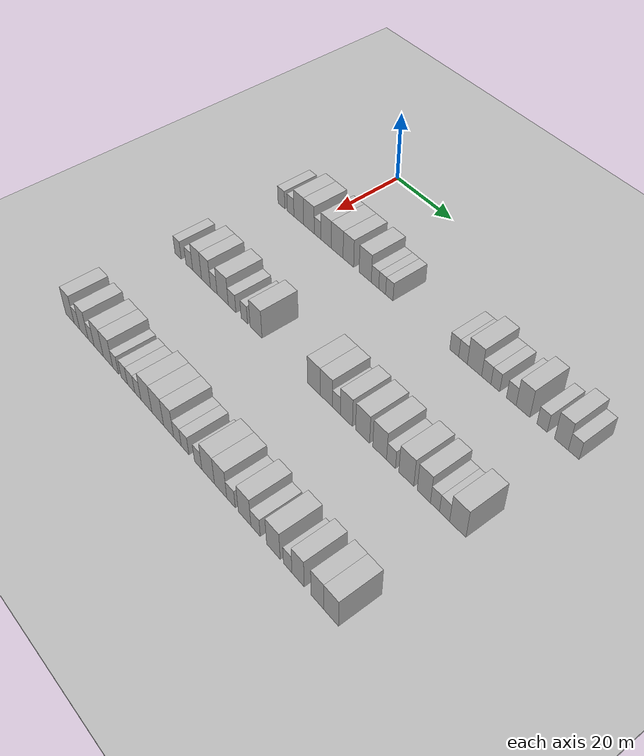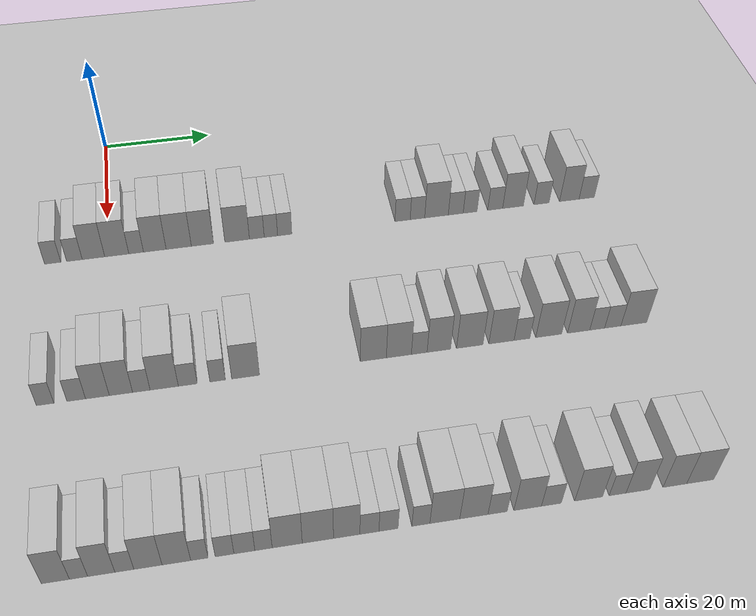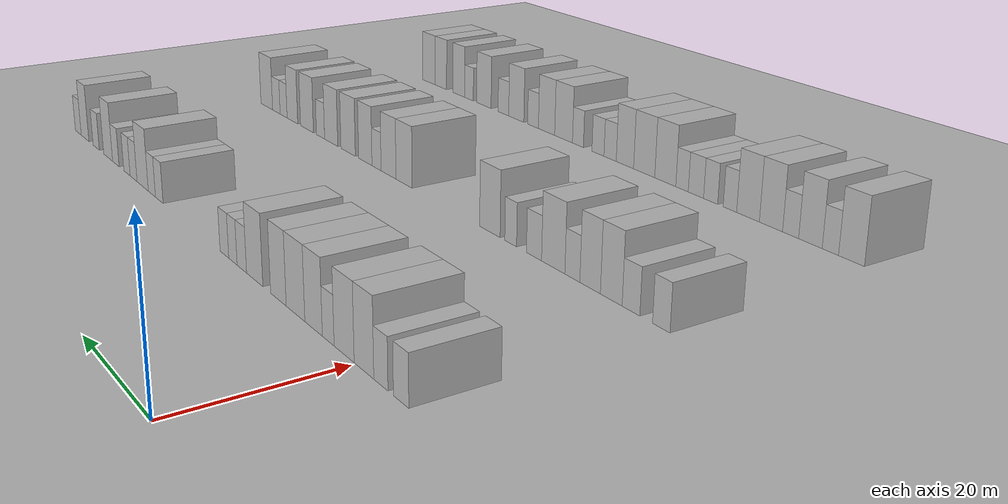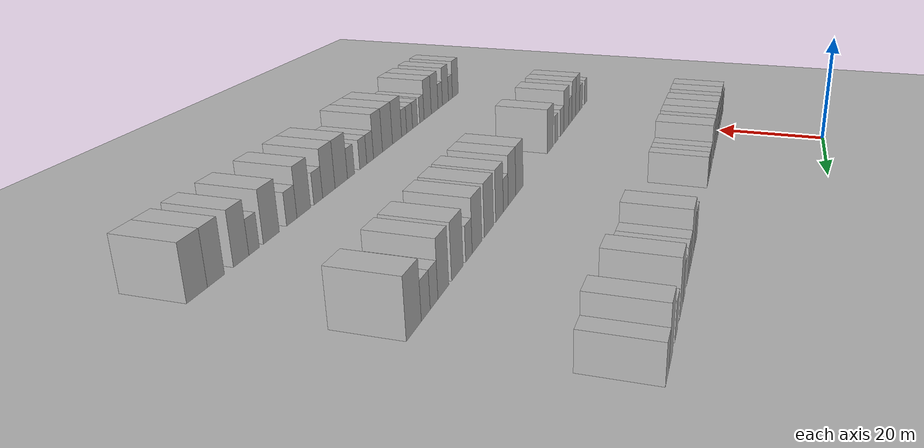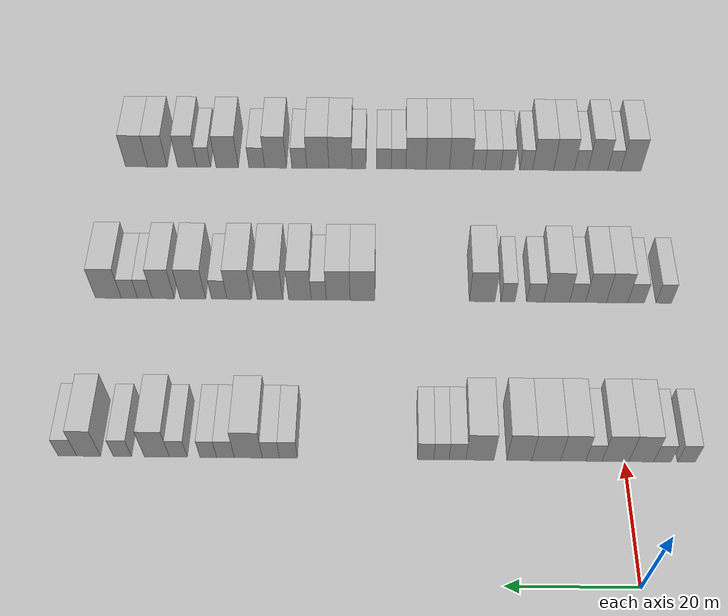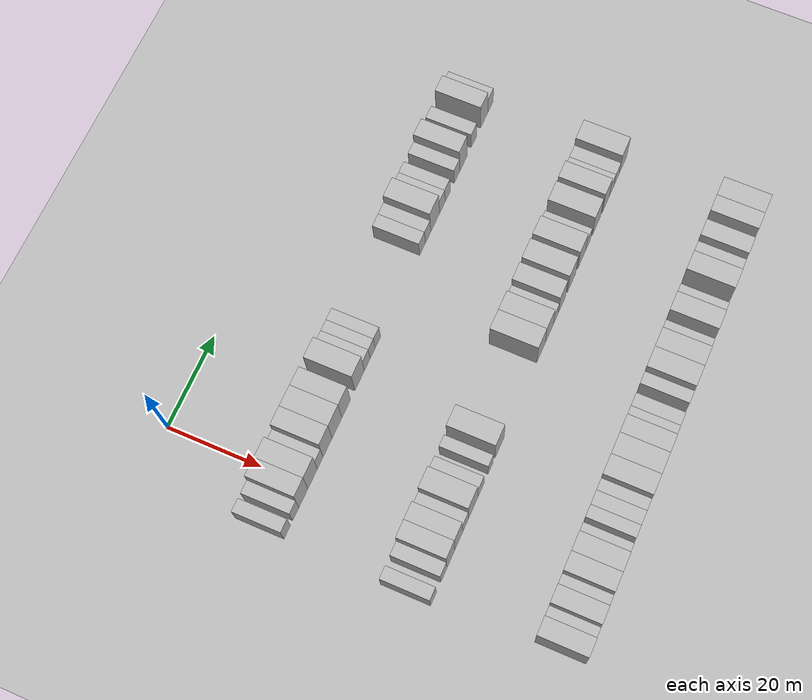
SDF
<sdf version="1.6">
 <world name="default">
  <include><name>ground_plane_1</name><uri>model://HANNAS_ground_plane</uri></include>
  <include>
   <name>ground_plane_2</name>
   <uri>model://HANNAS_ground_plane</uri>
   <pose>100 0 0  0 0 0</pose>
  </include>
  <model name="building_71">
   <static>1</static>
   <pose>25.0000 -9.4948 0 0.000000 0.000000 0.000000</pose>
   <link name="link">
    <pose>0 0 3.00 0 0 0</pose>
    <collision name="collision"><geometry><box><size>10.0000 2.7748 6.0000</size></box></geometry></collision>
    <visual name="visual">
     <cast_shadows>0</cast_shadows>
     <geometry><box><size>10.0000 2.7748 6.0000</size></box></geometry>
     <material>
      <script>
       <uri>model://HANNAS_wall/materials/scripts</uri>
       <uri>model://HANNAS_wall/materials/textures</uri>
       <name>vrc/HANNAS_wall</name>
      </script>
     </material>
    </visual>
   </link>
  </model>
  <model name="building_72">
   <static>1</static>
   <pose>25.0000 -5.7592 0 0.000000 0.000000 0.000000</pose>
   <link name="link">
    <pose>0 0 3.00 0 0 0</pose>
    <collision name="collision"><geometry><box><size>10.0000 2.6963 6.0000</size></box></geometry></collision>
    <visual name="visual">
     <cast_shadows>0</cast_shadows>
     <geometry><box><size>10.0000 2.6963 6.0000</size></box></geometry>
     <material>
      <script>
       <uri>model://HANNAS_wall/materials/scripts</uri>
       <uri>model://HANNAS_wall/materials/textures</uri>
       <name>vrc/HANNAS_wall</name>
      </script>
     </material>
    </visual>
   </link>
  </model>
  <model name="building_73">
   <static>1</static>
   <pose>25.0000 -2.4676 0 0.000000 0.000000 0.000000</pose>
   <link name="link">
    <pose>0 0 4.50 0 0 0</pose>
    <collision name="collision"><geometry><box><size>10.0000 3.8871 9.0000</size></box></geometry></collision>
    <visual name="visual">
     <cast_shadows>0</cast_shadows>
     <geometry><box><size>10.0000 3.8871 9.0000</size></box></geometry>
     <material>
      <script>
       <uri>model://HANNAS_wall/materials/scripts</uri>
       <uri>model://HANNAS_wall/materials/textures</uri>
       <name>vrc/HANNAS_wall</name>
      </script>
     </material>
    </visual>
   </link>
  </model>
  <model name="building_74">
   <static>1</static>
   <pose>25.0000 1.5703 0 0.000000 0.000000 0.000000</pose>
   <link name="link">
    <pose>0 0 4.50 0 0 0</pose>
    <collision name="collision"><geometry><box><size>10.0000 4.1886 9.0000</size></box></geometry></collision>
    <visual name="visual">
     <cast_shadows>0</cast_shadows>
     <geometry><box><size>10.0000 4.1886 9.0000</size></box></geometry>
     <material>
      <script>
       <uri>model://HANNAS_wall/materials/scripts</uri>
       <uri>model://HANNAS_wall/materials/textures</uri>
       <name>vrc/HANNAS_wall</name>
      </script>
     </material>
    </visual>
   </link>
  </model>
  <model name="building_75">
   <static>1</static>
   <pose>25.0000 4.9468 0 0.000000 0.000000 0.000000</pose>
   <link name="link">
    <pose>0 0 3.00 0 0 0</pose>
    <collision name="collision"><geometry><box><size>10.0000 2.5645 6.0000</size></box></geometry></collision>
    <visual name="visual">
     <cast_shadows>0</cast_shadows>
     <geometry><box><size>10.0000 2.5645 6.0000</size></box></geometry>
     <material>
      <script>
       <uri>model://HANNAS_wall/materials/scripts</uri>
       <uri>model://HANNAS_wall/materials/textures</uri>
       <name>vrc/HANNAS_wall</name>
      </script>
     </material>
    </visual>
   </link>
  </model>
  <model name="building_76">
   <static>1</static>
   <pose>25.0000 8.2102 0 0.000000 0.000000 0.000000</pose>
   <link name="link">
    <pose>0 0 4.50 0 0 0</pose>
    <collision name="collision"><geometry><box><size>10.0000 3.9624 9.0000</size></box></geometry></collision>
    <visual name="visual">
     <cast_shadows>0</cast_shadows>
     <geometry><box><size>10.0000 3.9624 9.0000</size></box></geometry>
     <material>
      <script>
       <uri>model://HANNAS_wall/materials/scripts</uri>
       <uri>model://HANNAS_wall/materials/textures</uri>
       <name>vrc/HANNAS_wall</name>
      </script>
     </material>
    </visual>
   </link>
  </model>
  <model name="building_77">
   <static>1</static>
   <pose>25.0000 12.4152 0 0.000000 0.000000 0.000000</pose>
   <link name="link">
    <pose>0 0 4.50 0 0 0</pose>
    <collision name="collision"><geometry><box><size>10.0000 4.4475 9.0000</size></box></geometry></collision>
    <visual name="visual">
     <cast_shadows>0</cast_shadows>
     <geometry><box><size>10.0000 4.4475 9.0000</size></box></geometry>
     <material>
      <script>
       <uri>model://HANNAS_wall/materials/scripts</uri>
       <uri>model://HANNAS_wall/materials/textures</uri>
       <name>vrc/HANNAS_wall</name>
      </script>
     </material>
    </visual>
   </link>
  </model>
  <model name="building_78">
   <static>1</static>
   <pose>25.0000 16.6009 0 0.000000 0.000000 0.000000</pose>
   <link name="link">
    <pose>0 0 4.50 0 0 0</pose>
    <collision name="collision"><geometry><box><size>10.0000 3.9240 9.0000</size></box></geometry></collision>
    <visual name="visual">
     <cast_shadows>0</cast_shadows>
     <geometry><box><size>10.0000 3.9240 9.0000</size></box></geometry>
     <material>
      <script>
       <uri>model://HANNAS_wall/materials/scripts</uri>
       <uri>model://HANNAS_wall/materials/textures</uri>
       <name>vrc/HANNAS_wall</name>
      </script>
     </material>
    </visual>
   </link>
  </model>
  <model name="building_79">
   <static>1</static>
   <pose>25.0000 22.7558 0 0.000000 0.000000 0.000000</pose>
   <link name="link">
    <pose>0 0 4.50 0 0 0</pose>
    <collision name="collision"><geometry><box><size>10.0000 4.3857 9.0000</size></box></geometry></collision>
    <visual name="visual">
     <cast_shadows>0</cast_shadows>
     <geometry><box><size>10.0000 4.3857 9.0000</size></box></geometry>
     <material>
      <script>
       <uri>model://HANNAS_wall/materials/scripts</uri>
       <uri>model://HANNAS_wall/materials/textures</uri>
       <name>vrc/HANNAS_wall</name>
      </script>
     </material>
    </visual>
   </link>
  </model>
  <model name="building_80">
   <static>1</static>
   <pose>25.0000 26.2696 0 0.000000 0.000000 0.000000</pose>
   <link name="link">
    <pose>0 0 3.00 0 0 0</pose>
    <collision name="collision"><geometry><box><size>10.0000 2.6419 6.0000</size></box></geometry></collision>
    <visual name="visual">
     <cast_shadows>0</cast_shadows>
     <geometry><box><size>10.0000 2.6419 6.0000</size></box></geometry>
     <material>
      <script>
       <uri>model://HANNAS_wall/materials/scripts</uri>
       <uri>model://HANNAS_wall/materials/textures</uri>
       <name>vrc/HANNAS_wall</name>
      </script>
     </material>
    </visual>
   </link>
  </model>
  <model name="building_81">
   <static>1</static>
   <pose>25.0000 28.7924 0 0.000000 0.000000 0.000000</pose>
   <link name="link">
    <pose>0 0 3.00 0 0 0</pose>
    <collision name="collision"><geometry><box><size>10.0000 2.4036 6.0000</size></box></geometry></collision>
    <visual name="visual">
     <cast_shadows>0</cast_shadows>
     <geometry><box><size>10.0000 2.4036 6.0000</size></box></geometry>
     <material>
      <script>
       <uri>model://HANNAS_wall/materials/scripts</uri>
       <uri>model://HANNAS_wall/materials/textures</uri>
       <name>vrc/HANNAS_wall</name>
      </script>
     </material>
    </visual>
   </link>
  </model>
  <model name="building_82">
   <static>1</static>
   <pose>25.0000 31.2790 0 0.000000 0.000000 0.000000</pose>
   <link name="link">
    <pose>0 0 3.00 0 0 0</pose>
    <collision name="collision"><geometry><box><size>10.0000 2.5698 6.0000</size></box></geometry></collision>
    <visual name="visual">
     <cast_shadows>0</cast_shadows>
     <geometry><box><size>10.0000 2.5698 6.0000</size></box></geometry>
     <material>
      <script>
       <uri>model://HANNAS_wall/materials/scripts</uri>
       <uri>model://HANNAS_wall/materials/textures</uri>
       <name>vrc/HANNAS_wall</name>
      </script>
     </material>
    </visual>
   </link>
  </model>
  <model name="building_83">
   <static>1</static>
   <pose>25.0000 52.7685 0 0.000000 0.000000 0.000000</pose>
   <link name="link">
    <pose>0 0 3.00 0 0 0</pose>
    <collision name="collision"><geometry><box><size>10.0000 2.8031 6.0000</size></box></geometry></collision>
    <visual name="visual">
     <cast_shadows>0</cast_shadows>
     <geometry><box><size>10.0000 2.8031 6.0000</size></box></geometry>
     <material>
      <script>
       <uri>model://HANNAS_wall/materials/scripts</uri>
       <uri>model://HANNAS_wall/materials/textures</uri>
       <name>vrc/HANNAS_wall</name>
      </script>
     </material>
    </visual>
   </link>
  </model>
  <model name="building_84">
   <static>1</static>
   <pose>25.0000 55.5158 0 0.000000 0.000000 0.000000</pose>
   <link name="link">
    <pose>0 0 3.00 0 0 0</pose>
    <collision name="collision"><geometry><box><size>10.0000 2.6915 6.0000</size></box></geometry></collision>
    <visual name="visual">
     <cast_shadows>0</cast_shadows>
     <geometry><box><size>10.0000 2.6915 6.0000</size></box></geometry>
     <material>
      <script>
       <uri>model://HANNAS_wall/materials/scripts</uri>
       <uri>model://HANNAS_wall/materials/textures</uri>
       <name>vrc/HANNAS_wall</name>
      </script>
     </material>
    </visual>
   </link>
  </model>
  <model name="building_85">
   <static>1</static>
   <pose>25.0000 59.0555 0 0.000000 0.000000 0.000000</pose>
   <link name="link">
    <pose>0 0 4.50 0 0 0</pose>
    <collision name="collision"><geometry><box><size>10.0000 4.3878 9.0000</size></box></geometry></collision>
    <visual name="visual">
     <cast_shadows>0</cast_shadows>
     <geometry><box><size>10.0000 4.3878 9.0000</size></box></geometry>
     <material>
      <script>
       <uri>model://HANNAS_wall/materials/scripts</uri>
       <uri>model://HANNAS_wall/materials/textures</uri>
       <name>vrc/HANNAS_wall</name>
      </script>
     </material>
    </visual>
   </link>
  </model>
  <model name="building_86">
   <static>1</static>
   <pose>25.0000 62.6441 0 0.000000 0.000000 0.000000</pose>
   <link name="link">
    <pose>0 0 3.00 0 0 0</pose>
    <collision name="collision"><geometry><box><size>10.0000 2.7894 6.0000</size></box></geometry></collision>
    <visual name="visual">
     <cast_shadows>0</cast_shadows>
     <geometry><box><size>10.0000 2.7894 6.0000</size></box></geometry>
     <material>
      <script>
       <uri>model://HANNAS_wall/materials/scripts</uri>
       <uri>model://HANNAS_wall/materials/textures</uri>
       <name>vrc/HANNAS_wall</name>
      </script>
     </material>
    </visual>
   </link>
  </model>
  <model name="building_87">
   <static>1</static>
   <pose>25.0000 65.3398 0 0.000000 0.000000 0.000000</pose>
   <link name="link">
    <pose>0 0 3.00 0 0 0</pose>
    <collision name="collision"><geometry><box><size>10.0000 2.6021 6.0000</size></box></geometry></collision>
    <visual name="visual">
     <cast_shadows>0</cast_shadows>
     <geometry><box><size>10.0000 2.6021 6.0000</size></box></geometry>
     <material>
      <script>
       <uri>model://HANNAS_wall/materials/scripts</uri>
       <uri>model://HANNAS_wall/materials/textures</uri>
       <name>vrc/HANNAS_wall</name>
      </script>
     </material>
    </visual>
   </link>
  </model>
  <model name="building_88">
   <static>1</static>
   <pose>25.0000 70.0481 0 0.000000 0.000000 0.000000</pose>
   <link name="link">
    <pose>0 0 3.00 0 0 0</pose>
    <collision name="collision"><geometry><box><size>10.0000 2.8144 6.0000</size></box></geometry></collision>
    <visual name="visual">
     <cast_shadows>0</cast_shadows>
     <geometry><box><size>10.0000 2.8144 6.0000</size></box></geometry>
     <material>
      <script>
       <uri>model://HANNAS_wall/materials/scripts</uri>
       <uri>model://HANNAS_wall/materials/textures</uri>
       <name>vrc/HANNAS_wall</name>
      </script>
     </material>
    </visual>
   </link>
  </model>
  <model name="building_89">
   <static>1</static>
   <pose>25.0000 73.4214 0 0.000000 0.000000 0.000000</pose>
   <link name="link">
    <pose>0 0 4.50 0 0 0</pose>
    <collision name="collision"><geometry><box><size>10.0000 3.9324 9.0000</size></box></geometry></collision>
    <visual name="visual">
     <cast_shadows>0</cast_shadows>
     <geometry><box><size>10.0000 3.9324 9.0000</size></box></geometry>
     <material>
      <script>
       <uri>model://HANNAS_wall/materials/scripts</uri>
       <uri>model://HANNAS_wall/materials/textures</uri>
       <name>vrc/HANNAS_wall</name>
      </script>
     </material>
    </visual>
   </link>
  </model>
  <model name="building_90">
   <static>1</static>
   <pose>25.0000 78.8305 0 0.000000 0.000000 0.000000</pose>
   <link name="link">
    <pose>0 0 3.00 0 0 0</pose>
    <collision name="collision"><geometry><box><size>10.0000 2.8858 6.0000</size></box></geometry></collision>
    <visual name="visual">
     <cast_shadows>0</cast_shadows>
     <geometry><box><size>10.0000 2.8858 6.0000</size></box></geometry>
     <material>
      <script>
       <uri>model://HANNAS_wall/materials/scripts</uri>
       <uri>model://HANNAS_wall/materials/textures</uri>
       <name>vrc/HANNAS_wall</name>
      </script>
     </material>
    </visual>
   </link>
  </model>
  <model name="building_91">
   <static>1</static>
   <pose>25.0000 84.1403 0 0.000000 0.000000 0.000000</pose>
   <link name="link">
    <pose>0 0 4.50 0 0 0</pose>
    <collision name="collision"><geometry><box><size>10.0000 3.7338 9.0000</size></box></geometry></collision>
    <visual name="visual">
     <cast_shadows>0</cast_shadows>
     <geometry><box><size>10.0000 3.7338 9.0000</size></box></geometry>
     <material>
      <script>
       <uri>model://HANNAS_wall/materials/scripts</uri>
       <uri>model://HANNAS_wall/materials/textures</uri>
       <name>vrc/HANNAS_wall</name>
      </script>
     </material>
    </visual>
   </link>
  </model>
  <model name="building_92">
   <static>1</static>
   <pose>25.0000 87.4700 0 0.000000 0.000000 0.000000</pose>
   <link name="link">
    <pose>0 0 3.00 0 0 0</pose>
    <collision name="collision"><geometry><box><size>10.0000 2.9255 6.0000</size></box></geometry></collision>
    <visual name="visual">
     <cast_shadows>0</cast_shadows>
     <geometry><box><size>10.0000 2.9255 6.0000</size></box></geometry>
     <material>
      <script>
       <uri>model://HANNAS_wall/materials/scripts</uri>
       <uri>model://HANNAS_wall/materials/textures</uri>
       <name>vrc/HANNAS_wall</name>
      </script>
     </material>
    </visual>
   </link>
  </model>
  <model name="building_207">
   <static>1</static>
   <pose>55.0000 -10.1651 0 0.000000 0.000000 0.000000</pose>
   <link name="link">
    <pose>0 0 3.00 0 0 0</pose>
    <collision name="collision"><geometry><box><size>10.0000 2.6800 6.0000</size></box></geometry></collision>
    <visual name="visual">
     <cast_shadows>0</cast_shadows>
     <geometry><box><size>10.0000 2.6800 6.0000</size></box></geometry>
     <material>
      <script>
       <uri>model://HANNAS_wall/materials/scripts</uri>
       <uri>model://HANNAS_wall/materials/textures</uri>
       <name>vrc/HANNAS_wall</name>
      </script>
     </material>
    </visual>
   </link>
  </model>
  <model name="building_208">
   <static>1</static>
   <pose>55.0000 -5.3910 0 0.000000 0.000000 0.000000</pose>
   <link name="link">
    <pose>0 0 3.00 0 0 0</pose>
    <collision name="collision"><geometry><box><size>10.0000 2.8683 6.0000</size></box></geometry></collision>
    <visual name="visual">
     <cast_shadows>0</cast_shadows>
     <geometry><box><size>10.0000 2.8683 6.0000</size></box></geometry>
     <material>
      <script>
       <uri>model://HANNAS_wall/materials/scripts</uri>
       <uri>model://HANNAS_wall/materials/textures</uri>
       <name>vrc/HANNAS_wall</name>
      </script>
     </material>
    </visual>
   </link>
  </model>
  <model name="building_209">
   <static>1</static>
   <pose>55.0000 -2.1223 0 0.000000 0.000000 0.000000</pose>
   <link name="link">
    <pose>0 0 4.50 0 0 0</pose>
    <collision name="collision"><geometry><box><size>10.0000 3.6690 9.0000</size></box></geometry></collision>
    <visual name="visual">
     <cast_shadows>0</cast_shadows>
     <geometry><box><size>10.0000 3.6690 9.0000</size></box></geometry>
     <material>
      <script>
       <uri>model://HANNAS_wall/materials/scripts</uri>
       <uri>model://HANNAS_wall/materials/textures</uri>
       <name>vrc/HANNAS_wall</name>
      </script>
     </material>
    </visual>
   </link>
  </model>
  <model name="building_210">
   <static>1</static>
   <pose>55.0000 1.5188 0 0.000000 0.000000 0.000000</pose>
   <link name="link">
    <pose>0 0 4.50 0 0 0</pose>
    <collision name="collision"><geometry><box><size>10.0000 3.6132 9.0000</size></box></geometry></collision>
    <visual name="visual">
     <cast_shadows>0</cast_shadows>
     <geometry><box><size>10.0000 3.6132 9.0000</size></box></geometry>
     <material>
      <script>
       <uri>model://HANNAS_wall/materials/scripts</uri>
       <uri>model://HANNAS_wall/materials/textures</uri>
       <name>vrc/HANNAS_wall</name>
      </script>
     </material>
    </visual>
   </link>
  </model>
  <model name="building_211">
   <static>1</static>
   <pose>55.0000 4.6903 0 0.000000 0.000000 0.000000</pose>
   <link name="link">
    <pose>0 0 3.00 0 0 0</pose>
    <collision name="collision"><geometry><box><size>10.0000 2.7299 6.0000</size></box></geometry></collision>
    <visual name="visual">
     <cast_shadows>0</cast_shadows>
     <geometry><box><size>10.0000 2.7299 6.0000</size></box></geometry>
     <material>
      <script>
       <uri>model://HANNAS_wall/materials/scripts</uri>
       <uri>model://HANNAS_wall/materials/textures</uri>
       <name>vrc/HANNAS_wall</name>
      </script>
     </material>
    </visual>
   </link>
  </model>
  <model name="building_212">
   <static>1</static>
   <pose>55.0000 8.2659 0 0.000000 0.000000 0.000000</pose>
   <link name="link">
    <pose>0 0 4.50 0 0 0</pose>
    <collision name="collision"><geometry><box><size>10.0000 4.4211 9.0000</size></box></geometry></collision>
    <visual name="visual">
     <cast_shadows>0</cast_shadows>
     <geometry><box><size>10.0000 4.4211 9.0000</size></box></geometry>
     <material>
      <script>
       <uri>model://HANNAS_wall/materials/scripts</uri>
       <uri>model://HANNAS_wall/materials/textures</uri>
       <name>vrc/HANNAS_wall</name>
      </script>
     </material>
    </visual>
   </link>
  </model>
  <model name="building_213">
   <static>1</static>
   <pose>55.0000 11.9665 0 0.000000 0.000000 0.000000</pose>
   <link name="link">
    <pose>0 0 3.00 0 0 0</pose>
    <collision name="collision"><geometry><box><size>10.0000 2.9802 6.0000</size></box></geometry></collision>
    <visual name="visual">
     <cast_shadows>0</cast_shadows>
     <geometry><box><size>10.0000 2.9802 6.0000</size></box></geometry>
     <material>
      <script>
       <uri>model://HANNAS_wall/materials/scripts</uri>
       <uri>model://HANNAS_wall/materials/textures</uri>
       <name>vrc/HANNAS_wall</name>
      </script>
     </material>
    </visual>
   </link>
  </model>
  <model name="building_214">
   <static>1</static>
   <pose>55.0000 16.6812 0 0.000000 0.000000 0.000000</pose>
   <link name="link">
    <pose>0 0 3.00 0 0 0</pose>
    <collision name="collision"><geometry><box><size>10.0000 2.4492 6.0000</size></box></geometry></collision>
    <visual name="visual">
     <cast_shadows>0</cast_shadows>
     <geometry><box><size>10.0000 2.4492 6.0000</size></box></geometry>
     <material>
      <script>
       <uri>model://HANNAS_wall/materials/scripts</uri>
       <uri>model://HANNAS_wall/materials/textures</uri>
       <name>vrc/HANNAS_wall</name>
      </script>
     </material>
    </visual>
   </link>
  </model>
  <model name="building_215">
   <static>1</static>
   <pose>55.0000 21.1216 0 0.000000 0.000000 0.000000</pose>
   <link name="link">
    <pose>0 0 4.50 0 0 0</pose>
    <collision name="collision"><geometry><box><size>10.0000 4.4315 9.0000</size></box></geometry></collision>
    <visual name="visual">
     <cast_shadows>0</cast_shadows>
     <geometry><box><size>10.0000 4.4315 9.0000</size></box></geometry>
     <material>
      <script>
       <uri>model://HANNAS_wall/materials/scripts</uri>
       <uri>model://HANNAS_wall/materials/textures</uri>
       <name>vrc/HANNAS_wall</name>
      </script>
     </material>
    </visual>
   </link>
  </model>
  <model name="building_216">
   <static>1</static>
   <pose>55.0000 41.7504 0 0.000000 0.000000 0.000000</pose>
   <link name="link">
    <pose>0 0 4.50 0 0 0</pose>
    <collision name="collision"><geometry><box><size>10.0000 4.2754 9.0000</size></box></geometry></collision>
    <visual name="visual">
     <cast_shadows>0</cast_shadows>
     <geometry><box><size>10.0000 4.2754 9.0000</size></box></geometry>
     <material>
      <script>
       <uri>model://HANNAS_wall/materials/scripts</uri>
       <uri>model://HANNAS_wall/materials/textures</uri>
       <name>vrc/HANNAS_wall</name>
      </script>
     </material>
    </visual>
   </link>
  </model>
  <model name="building_217">
   <static>1</static>
   <pose>55.0000 45.9517 0 0.000000 0.000000 0.000000</pose>
   <link name="link">
    <pose>0 0 4.50 0 0 0</pose>
    <collision name="collision"><geometry><box><size>10.0000 4.1271 9.0000</size></box></geometry></collision>
    <visual name="visual">
     <cast_shadows>0</cast_shadows>
     <geometry><box><size>10.0000 4.1271 9.0000</size></box></geometry>
     <material>
      <script>
       <uri>model://HANNAS_wall/materials/scripts</uri>
       <uri>model://HANNAS_wall/materials/textures</uri>
       <name>vrc/HANNAS_wall</name>
      </script>
     </material>
    </visual>
   </link>
  </model>
  <model name="building_218">
   <static>1</static>
   <pose>55.0000 49.3114 0 0.000000 0.000000 0.000000</pose>
   <link name="link">
    <pose>0 0 3.00 0 0 0</pose>
    <collision name="collision"><geometry><box><size>10.0000 2.5923 6.0000</size></box></geometry></collision>
    <visual name="visual">
     <cast_shadows>0</cast_shadows>
     <geometry><box><size>10.0000 2.5923 6.0000</size></box></geometry>
     <material>
      <script>
       <uri>model://HANNAS_wall/materials/scripts</uri>
       <uri>model://HANNAS_wall/materials/textures</uri>
       <name>vrc/HANNAS_wall</name>
      </script>
     </material>
    </visual>
   </link>
  </model>
  <model name="building_219">
   <static>1</static>
   <pose>55.0000 52.5547 0 0.000000 0.000000 0.000000</pose>
   <link name="link">
    <pose>0 0 4.50 0 0 0</pose>
    <collision name="collision"><geometry><box><size>10.0000 3.8944 9.0000</size></box></geometry></collision>
    <visual name="visual">
     <cast_shadows>0</cast_shadows>
     <geometry><box><size>10.0000 3.8944 9.0000</size></box></geometry>
     <material>
      <script>
       <uri>model://HANNAS_wall/materials/scripts</uri>
       <uri>model://HANNAS_wall/materials/textures</uri>
       <name>vrc/HANNAS_wall</name>
      </script>
     </material>
    </visual>
   </link>
  </model>
  <model name="building_220">
   <static>1</static>
   <pose>55.0000 57.7104 0 0.000000 0.000000 0.000000</pose>
   <link name="link">
    <pose>0 0 4.50 0 0 0</pose>
    <collision name="collision"><geometry><box><size>10.0000 4.4170 9.0000</size></box></geometry></collision>
    <visual name="visual">
     <cast_shadows>0</cast_shadows>
     <geometry><box><size>10.0000 4.4170 9.0000</size></box></geometry>
     <material>
      <script>
       <uri>model://HANNAS_wall/materials/scripts</uri>
       <uri>model://HANNAS_wall/materials/textures</uri>
       <name>vrc/HANNAS_wall</name>
      </script>
     </material>
    </visual>
   </link>
  </model>
  <model name="building_221">
   <static>1</static>
   <pose>55.0000 63.0355 0 0.000000 0.000000 0.000000</pose>
   <link name="link">
    <pose>0 0 4.50 0 0 0</pose>
    <collision name="collision"><geometry><box><size>10.0000 4.2332 9.0000</size></box></geometry></collision>
    <visual name="visual">
     <cast_shadows>0</cast_shadows>
     <geometry><box><size>10.0000 4.2332 9.0000</size></box></geometry>
     <material>
      <script>
       <uri>model://HANNAS_wall/materials/scripts</uri>
       <uri>model://HANNAS_wall/materials/textures</uri>
       <name>vrc/HANNAS_wall</name>
      </script>
     </material>
    </visual>
   </link>
  </model>
  <model name="building_222">
   <static>1</static>
   <pose>55.0000 66.4972 0 0.000000 0.000000 0.000000</pose>
   <link name="link">
    <pose>0 0 3.00 0 0 0</pose>
    <collision name="collision"><geometry><box><size>10.0000 2.6901 6.0000</size></box></geometry></collision>
    <visual name="visual">
     <cast_shadows>0</cast_shadows>
     <geometry><box><size>10.0000 2.6901 6.0000</size></box></geometry>
     <material>
      <script>
       <uri>model://HANNAS_wall/materials/scripts</uri>
       <uri>model://HANNAS_wall/materials/textures</uri>
       <name>vrc/HANNAS_wall</name>
      </script>
     </material>
    </visual>
   </link>
  </model>
  <model name="building_223">
   <static>1</static>
   <pose>55.0000 71.0511 0 0.000000 0.000000 0.000000</pose>
   <link name="link">
    <pose>0 0 4.50 0 0 0</pose>
    <collision name="collision"><geometry><box><size>10.0000 4.4177 9.0000</size></box></geometry></collision>
    <visual name="visual">
     <cast_shadows>0</cast_shadows>
     <geometry><box><size>10.0000 4.4177 9.0000</size></box></geometry>
     <material>
      <script>
       <uri>model://HANNAS_wall/materials/scripts</uri>
       <uri>model://HANNAS_wall/materials/textures</uri>
       <name>vrc/HANNAS_wall</name>
      </script>
     </material>
    </visual>
   </link>
  </model>
  <model name="building_224">
   <static>1</static>
   <pose>55.0000 76.1617 0 0.000000 0.000000 0.000000</pose>
   <link name="link">
    <pose>0 0 4.50 0 0 0</pose>
    <collision name="collision"><geometry><box><size>10.0000 3.8035 9.0000</size></box></geometry></collision>
    <visual name="visual">
     <cast_shadows>0</cast_shadows>
     <geometry><box><size>10.0000 3.8035 9.0000</size></box></geometry>
     <material>
      <script>
       <uri>model://HANNAS_wall/materials/scripts</uri>
       <uri>model://HANNAS_wall/materials/textures</uri>
       <name>vrc/HANNAS_wall</name>
      </script>
     </material>
    </visual>
   </link>
  </model>
  <model name="building_225">
   <static>1</static>
   <pose>55.0000 79.3460 0 0.000000 0.000000 0.000000</pose>
   <link name="link">
    <pose>0 0 3.00 0 0 0</pose>
    <collision name="collision"><geometry><box><size>10.0000 2.5651 6.0000</size></box></geometry></collision>
    <visual name="visual">
     <cast_shadows>0</cast_shadows>
     <geometry><box><size>10.0000 2.5651 6.0000</size></box></geometry>
     <material>
      <script>
       <uri>model://HANNAS_wall/materials/scripts</uri>
       <uri>model://HANNAS_wall/materials/textures</uri>
       <name>vrc/HANNAS_wall</name>
      </script>
     </material>
    </visual>
   </link>
  </model>
  <model name="building_226">
   <static>1</static>
   <pose>55.0000 82.0326 0 0.000000 0.000000 0.000000</pose>
   <link name="link">
    <pose>0 0 3.00 0 0 0</pose>
    <collision name="collision"><geometry><box><size>10.0000 2.8081 6.0000</size></box></geometry></collision>
    <visual name="visual">
     <cast_shadows>0</cast_shadows>
     <geometry><box><size>10.0000 2.8081 6.0000</size></box></geometry>
     <material>
      <script>
       <uri>model://HANNAS_wall/materials/scripts</uri>
       <uri>model://HANNAS_wall/materials/textures</uri>
       <name>vrc/HANNAS_wall</name>
      </script>
     </material>
    </visual>
   </link>
  </model>
  <model name="building_227">
   <static>1</static>
   <pose>55.0000 85.6730 0 0.000000 0.000000 0.000000</pose>
   <link name="link">
    <pose>0 0 4.50 0 0 0</pose>
    <collision name="collision"><geometry><box><size>10.0000 4.4727 9.0000</size></box></geometry></collision>
    <visual name="visual">
     <cast_shadows>0</cast_shadows>
     <geometry><box><size>10.0000 4.4727 9.0000</size></box></geometry>
     <material>
      <script>
       <uri>model://HANNAS_wall/materials/scripts</uri>
       <uri>model://HANNAS_wall/materials/textures</uri>
       <name>vrc/HANNAS_wall</name>
      </script>
     </material>
    </visual>
   </link>
  </model>
  <model name="building_339">
   <static>1</static>
   <pose>85.0000 -8.1659 0 0.000000 0.000000 0.000000</pose>
   <link name="link">
    <pose>0 0 4.50 0 0 0</pose>
    <collision name="collision"><geometry><box><size>10.0000 3.8071 9.0000</size></box></geometry></collision>
    <visual name="visual">
     <cast_shadows>0</cast_shadows>
     <geometry><box><size>10.0000 3.8071 9.0000</size></box></geometry>
     <material>
      <script>
       <uri>model://HANNAS_wall/materials/scripts</uri>
       <uri>model://HANNAS_wall/materials/textures</uri>
       <name>vrc/HANNAS_wall</name>
      </script>
     </material>
    </visual>
   </link>
  </model>
  <model name="building_340">
   <static>1</static>
   <pose>85.0000 -5.0262 0 0.000000 0.000000 0.000000</pose>
   <link name="link">
    <pose>0 0 3.00 0 0 0</pose>
    <collision name="collision"><geometry><box><size>10.0000 2.4725 6.0000</size></box></geometry></collision>
    <visual name="visual">
     <cast_shadows>0</cast_shadows>
     <geometry><box><size>10.0000 2.4725 6.0000</size></box></geometry>
     <material>
      <script>
       <uri>model://HANNAS_wall/materials/scripts</uri>
       <uri>model://HANNAS_wall/materials/textures</uri>
       <name>vrc/HANNAS_wall</name>
      </script>
     </material>
    </visual>
   </link>
  </model>
  <model name="building_341">
   <static>1</static>
   <pose>85.0000 -1.9423 0 0.000000 0.000000 0.000000</pose>
   <link name="link">
    <pose>0 0 4.50 0 0 0</pose>
    <collision name="collision"><geometry><box><size>10.0000 3.6953 9.0000</size></box></geometry></collision>
    <visual name="visual">
     <cast_shadows>0</cast_shadows>
     <geometry><box><size>10.0000 3.6953 9.0000</size></box></geometry>
     <material>
      <script>
       <uri>model://HANNAS_wall/materials/scripts</uri>
       <uri>model://HANNAS_wall/materials/textures</uri>
       <name>vrc/HANNAS_wall</name>
      </script>
     </material>
    </visual>
   </link>
  </model>
  <model name="building_342">
   <static>1</static>
   <pose>85.0000 1.1996 0 0.000000 0.000000 0.000000</pose>
   <link name="link">
    <pose>0 0 3.00 0 0 0</pose>
    <collision name="collision"><geometry><box><size>10.0000 2.5885 6.0000</size></box></geometry></collision>
    <visual name="visual">
     <cast_shadows>0</cast_shadows>
     <geometry><box><size>10.0000 2.5885 6.0000</size></box></geometry>
     <material>
      <script>
       <uri>model://HANNAS_wall/materials/scripts</uri>
       <uri>model://HANNAS_wall/materials/textures</uri>
       <name>vrc/HANNAS_wall</name>
      </script>
     </material>
    </visual>
   </link>
  </model>
  <model name="building_343">
   <static>1</static>
   <pose>85.0000 4.4324 0 0.000000 0.000000 0.000000</pose>
   <link name="link">
    <pose>0 0 4.50 0 0 0</pose>
    <collision name="collision"><geometry><box><size>10.0000 3.8771 9.0000</size></box></geometry></collision>
    <visual name="visual">
     <cast_shadows>0</cast_shadows>
     <geometry><box><size>10.0000 3.8771 9.0000</size></box></geometry>
     <material>
      <script>
       <uri>model://HANNAS_wall/materials/scripts</uri>
       <uri>model://HANNAS_wall/materials/textures</uri>
       <name>vrc/HANNAS_wall</name>
      </script>
     </material>
    </visual>
   </link>
  </model>
  <model name="building_344">
   <static>1</static>
   <pose>85.0000 8.3460 0 0.000000 0.000000 0.000000</pose>
   <link name="link">
    <pose>0 0 4.50 0 0 0</pose>
    <collision name="collision"><geometry><box><size>10.0000 3.9500 9.0000</size></box></geometry></collision>
    <visual name="visual">
     <cast_shadows>0</cast_shadows>
     <geometry><box><size>10.0000 3.9500 9.0000</size></box></geometry>
     <material>
      <script>
       <uri>model://HANNAS_wall/materials/scripts</uri>
       <uri>model://HANNAS_wall/materials/textures</uri>
       <name>vrc/HANNAS_wall</name>
      </script>
     </material>
    </visual>
   </link>
  </model>
  <model name="building_345">
   <static>1</static>
   <pose>85.0000 11.5283 0 0.000000 0.000000 0.000000</pose>
   <link name="link">
    <pose>0 0 3.00 0 0 0</pose>
    <collision name="collision"><geometry><box><size>10.0000 2.4145 6.0000</size></box></geometry></collision>
    <visual name="visual">
     <cast_shadows>0</cast_shadows>
     <geometry><box><size>10.0000 2.4145 6.0000</size></box></geometry>
     <material>
      <script>
       <uri>model://HANNAS_wall/materials/scripts</uri>
       <uri>model://HANNAS_wall/materials/textures</uri>
       <name>vrc/HANNAS_wall</name>
      </script>
     </material>
    </visual>
   </link>
  </model>
  <model name="building_346">
   <static>1</static>
   <pose>85.0000 15.0436 0 0.000000 0.000000 0.000000</pose>
   <link name="link">
    <pose>0 0 3.00 0 0 0</pose>
    <collision name="collision"><geometry><box><size>10.0000 2.6162 6.0000</size></box></geometry></collision>
    <visual name="visual">
     <cast_shadows>0</cast_shadows>
     <geometry><box><size>10.0000 2.6162 6.0000</size></box></geometry>
     <material>
      <script>
       <uri>model://HANNAS_wall/materials/scripts</uri>
       <uri>model://HANNAS_wall/materials/textures</uri>
       <name>vrc/HANNAS_wall</name>
      </script>
     </material>
    </visual>
   </link>
  </model>
  <model name="building_347">
   <static>1</static>
   <pose>85.0000 17.8166 0 0.000000 0.000000 0.000000</pose>
   <link name="link">
    <pose>0 0 3.00 0 0 0</pose>
    <collision name="collision"><geometry><box><size>10.0000 2.9298 6.0000</size></box></geometry></collision>
    <visual name="visual">
     <cast_shadows>0</cast_shadows>
     <geometry><box><size>10.0000 2.9298 6.0000</size></box></geometry>
     <material>
      <script>
       <uri>model://HANNAS_wall/materials/scripts</uri>
       <uri>model://HANNAS_wall/materials/textures</uri>
       <name>vrc/HANNAS_wall</name>
      </script>
     </material>
    </visual>
   </link>
  </model>
  <model name="building_348">
   <static>1</static>
   <pose>85.0000 20.4969 0 0.000000 0.000000 0.000000</pose>
   <link name="link">
    <pose>0 0 3.00 0 0 0</pose>
    <collision name="collision"><geometry><box><size>10.0000 2.4309 6.0000</size></box></geometry></collision>
    <visual name="visual">
     <cast_shadows>0</cast_shadows>
     <geometry><box><size>10.0000 2.4309 6.0000</size></box></geometry>
     <material>
      <script>
       <uri>model://HANNAS_wall/materials/scripts</uri>
       <uri>model://HANNAS_wall/materials/textures</uri>
       <name>vrc/HANNAS_wall</name>
      </script>
     </material>
    </visual>
   </link>
  </model>
  <model name="building_349">
   <static>1</static>
   <pose>85.0000 23.8384 0 0.000000 0.000000 0.000000</pose>
   <link name="link">
    <pose>0 0 4.50 0 0 0</pose>
    <collision name="collision"><geometry><box><size>10.0000 4.2521 9.0000</size></box></geometry></collision>
    <visual name="visual">
     <cast_shadows>0</cast_shadows>
     <geometry><box><size>10.0000 4.2521 9.0000</size></box></geometry>
     <material>
      <script>
       <uri>model://HANNAS_wall/materials/scripts</uri>
       <uri>model://HANNAS_wall/materials/textures</uri>
       <name>vrc/HANNAS_wall</name>
      </script>
     </material>
    </visual>
   </link>
  </model>
  <model name="building_350">
   <static>1</static>
   <pose>85.0000 28.1853 0 0.000000 0.000000 0.000000</pose>
   <link name="link">
    <pose>0 0 4.50 0 0 0</pose>
    <collision name="collision"><geometry><box><size>10.0000 4.4417 9.0000</size></box></geometry></collision>
    <visual name="visual">
     <cast_shadows>0</cast_shadows>
     <geometry><box><size>10.0000 4.4417 9.0000</size></box></geometry>
     <material>
      <script>
       <uri>model://HANNAS_wall/materials/scripts</uri>
       <uri>model://HANNAS_wall/materials/textures</uri>
       <name>vrc/HANNAS_wall</name>
      </script>
     </material>
    </visual>
   </link>
  </model>
  <model name="building_351">
   <static>1</static>
   <pose>85.0000 32.2963 0 0.000000 0.000000 0.000000</pose>
   <link name="link">
    <pose>0 0 4.50 0 0 0</pose>
    <collision name="collision"><geometry><box><size>10.0000 3.7802 9.0000</size></box></geometry></collision>
    <visual name="visual">
     <cast_shadows>0</cast_shadows>
     <geometry><box><size>10.0000 3.7802 9.0000</size></box></geometry>
     <material>
      <script>
       <uri>model://HANNAS_wall/materials/scripts</uri>
       <uri>model://HANNAS_wall/materials/textures</uri>
       <name>vrc/HANNAS_wall</name>
      </script>
     </material>
    </visual>
   </link>
  </model>
  <model name="building_352">
   <static>1</static>
   <pose>85.0000 35.5588 0 0.000000 0.000000 0.000000</pose>
   <link name="link">
    <pose>0 0 3.00 0 0 0</pose>
    <collision name="collision"><geometry><box><size>10.0000 2.7447 6.0000</size></box></geometry></collision>
    <visual name="visual">
     <cast_shadows>0</cast_shadows>
     <geometry><box><size>10.0000 2.7447 6.0000</size></box></geometry>
     <material>
      <script>
       <uri>model://HANNAS_wall/materials/scripts</uri>
       <uri>model://HANNAS_wall/materials/textures</uri>
       <name>vrc/HANNAS_wall</name>
      </script>
     </material>
    </visual>
   </link>
  </model>
  <model name="building_353">
   <static>1</static>
   <pose>85.0000 38.3121 0 0.000000 0.000000 0.000000</pose>
   <link name="link">
    <pose>0 0 3.00 0 0 0</pose>
    <collision name="collision"><geometry><box><size>10.0000 2.7620 6.0000</size></box></geometry></collision>
    <visual name="visual">
     <cast_shadows>0</cast_shadows>
     <geometry><box><size>10.0000 2.7620 6.0000</size></box></geometry>
     <material>
      <script>
       <uri>model://HANNAS_wall/materials/scripts</uri>
       <uri>model://HANNAS_wall/materials/textures</uri>
       <name>vrc/HANNAS_wall</name>
      </script>
     </material>
    </visual>
   </link>
  </model>
  <model name="building_354">
   <static>1</static>
   <pose>85.0000 43.0044 0 0.000000 0.000000 0.000000</pose>
   <link name="link">
    <pose>0 0 3.00 0 0 0</pose>
    <collision name="collision"><geometry><box><size>10.0000 2.6227 6.0000</size></box></geometry></collision>
    <visual name="visual">
     <cast_shadows>0</cast_shadows>
     <geometry><box><size>10.0000 2.6227 6.0000</size></box></geometry>
     <material>
      <script>
       <uri>model://HANNAS_wall/materials/scripts</uri>
       <uri>model://HANNAS_wall/materials/textures</uri>
       <name>vrc/HANNAS_wall</name>
      </script>
     </material>
    </visual>
   </link>
  </model>
  <model name="building_355">
   <static>1</static>
   <pose>85.0000 46.5069 0 0.000000 0.000000 0.000000</pose>
   <link name="link">
    <pose>0 0 4.50 0 0 0</pose>
    <collision name="collision"><geometry><box><size>10.0000 4.3821 9.0000</size></box></geometry></collision>
    <visual name="visual">
     <cast_shadows>0</cast_shadows>
     <geometry><box><size>10.0000 4.3821 9.0000</size></box></geometry>
     <material>
      <script>
       <uri>model://HANNAS_wall/materials/scripts</uri>
       <uri>model://HANNAS_wall/materials/textures</uri>
       <name>vrc/HANNAS_wall</name>
      </script>
     </material>
    </visual>
   </link>
  </model>
  <model name="building_356">
   <static>1</static>
   <pose>85.0000 50.7730 0 0.000000 0.000000 0.000000</pose>
   <link name="link">
    <pose>0 0 4.50 0 0 0</pose>
    <collision name="collision"><geometry><box><size>10.0000 4.1500 9.0000</size></box></geometry></collision>
    <visual name="visual">
     <cast_shadows>0</cast_shadows>
     <geometry><box><size>10.0000 4.1500 9.0000</size></box></geometry>
     <material>
      <script>
       <uri>model://HANNAS_wall/materials/scripts</uri>
       <uri>model://HANNAS_wall/materials/textures</uri>
       <name>vrc/HANNAS_wall</name>
      </script>
     </material>
    </visual>
   </link>
  </model>
  <model name="building_357">
   <static>1</static>
   <pose>85.0000 54.2668 0 0.000000 0.000000 0.000000</pose>
   <link name="link">
    <pose>0 0 3.00 0 0 0</pose>
    <collision name="collision"><geometry><box><size>10.0000 2.8375 6.0000</size></box></geometry></collision>
    <visual name="visual">
     <cast_shadows>0</cast_shadows>
     <geometry><box><size>10.0000 2.8375 6.0000</size></box></geometry>
     <material>
      <script>
       <uri>model://HANNAS_wall/materials/scripts</uri>
       <uri>model://HANNAS_wall/materials/textures</uri>
       <name>vrc/HANNAS_wall</name>
      </script>
     </material>
    </visual>
   </link>
  </model>
  <model name="building_358">
   <static>1</static>
   <pose>85.0000 58.7408 0 0.000000 0.000000 0.000000</pose>
   <link name="link">
    <pose>0 0 4.50 0 0 0</pose>
    <collision name="collision"><geometry><box><size>10.0000 4.1104 9.0000</size></box></geometry></collision>
    <visual name="visual">
     <cast_shadows>0</cast_shadows>
     <geometry><box><size>10.0000 4.1104 9.0000</size></box></geometry>
     <material>
      <script>
       <uri>model://HANNAS_wall/materials/scripts</uri>
       <uri>model://HANNAS_wall/materials/textures</uri>
       <name>vrc/HANNAS_wall</name>
      </script>
     </material>
    </visual>
   </link>
  </model>
  <model name="building_359">
   <static>1</static>
   <pose>85.0000 62.2861 0 0.000000 0.000000 0.000000</pose>
   <link name="link">
    <pose>0 0 3.00 0 0 0</pose>
    <collision name="collision"><geometry><box><size>10.0000 2.9802 6.0000</size></box></geometry></collision>
    <visual name="visual">
     <cast_shadows>0</cast_shadows>
     <geometry><box><size>10.0000 2.9802 6.0000</size></box></geometry>
     <material>
      <script>
       <uri>model://HANNAS_wall/materials/scripts</uri>
       <uri>model://HANNAS_wall/materials/textures</uri>
       <name>vrc/HANNAS_wall</name>
      </script>
     </material>
    </visual>
   </link>
  </model>
  <model name="building_360">
   <static>1</static>
   <pose>85.0000 67.8842 0 0.000000 0.000000 0.000000</pose>
   <link name="link">
    <pose>0 0 4.50 0 0 0</pose>
    <collision name="collision"><geometry><box><size>10.0000 4.2161 9.0000</size></box></geometry></collision>
    <visual name="visual">
     <cast_shadows>0</cast_shadows>
     <geometry><box><size>10.0000 4.2161 9.0000</size></box></geometry>
     <material>
      <script>
       <uri>model://HANNAS_wall/materials/scripts</uri>
       <uri>model://HANNAS_wall/materials/textures</uri>
       <name>vrc/HANNAS_wall</name>
      </script>
     </material>
    </visual>
   </link>
  </model>
  <model name="building_361">
   <static>1</static>
   <pose>85.0000 72.2823 0 0.000000 0.000000 0.000000</pose>
   <link name="link">
    <pose>0 0 3.00 0 0 0</pose>
    <collision name="collision"><geometry><box><size>10.0000 2.5800 6.0000</size></box></geometry></collision>
    <visual name="visual">
     <cast_shadows>0</cast_shadows>
     <geometry><box><size>10.0000 2.5800 6.0000</size></box></geometry>
     <material>
      <script>
       <uri>model://HANNAS_wall/materials/scripts</uri>
       <uri>model://HANNAS_wall/materials/textures</uri>
       <name>vrc/HANNAS_wall</name>
      </script>
     </material>
    </visual>
   </link>
  </model>
  <model name="building_362">
   <static>1</static>
   <pose>85.0000 75.3947 0 0.000000 0.000000 0.000000</pose>
   <link name="link">
    <pose>0 0 4.50 0 0 0</pose>
    <collision name="collision"><geometry><box><size>10.0000 3.6449 9.0000</size></box></geometry></collision>
    <visual name="visual">
     <cast_shadows>0</cast_shadows>
     <geometry><box><size>10.0000 3.6449 9.0000</size></box></geometry>
     <material>
      <script>
       <uri>model://HANNAS_wall/materials/scripts</uri>
       <uri>model://HANNAS_wall/materials/textures</uri>
       <name>vrc/HANNAS_wall</name>
      </script>
     </material>
    </visual>
   </link>
  </model>
  <model name="building_363">
   <static>1</static>
   <pose>85.0000 81.0404 0 0.000000 0.000000 0.000000</pose>
   <link name="link">
    <pose>0 0 4.50 0 0 0</pose>
    <collision name="collision"><geometry><box><size>10.0000 3.6464 9.0000</size></box></geometry></collision>
    <visual name="visual">
     <cast_shadows>0</cast_shadows>
     <geometry><box><size>10.0000 3.6464 9.0000</size></box></geometry>
     <material>
      <script>
       <uri>model://HANNAS_wall/materials/scripts</uri>
       <uri>model://HANNAS_wall/materials/textures</uri>
       <name>vrc/HANNAS_wall</name>
      </script>
     </material>
    </visual>
   </link>
  </model>
  <model name="building_364">
   <static>1</static>
   <pose>85.0000 84.9686 0 0.000000 0.000000 0.000000</pose>
   <link name="link">
    <pose>0 0 4.50 0 0 0</pose>
    <collision name="collision"><geometry><box><size>10.0000 4.2101 9.0000</size></box></geometry></collision>
    <visual name="visual">
     <cast_shadows>0</cast_shadows>
     <geometry><box><size>10.0000 4.2101 9.0000</size></box></geometry>
     <material>
      <script>
       <uri>model://HANNAS_wall/materials/scripts</uri>
       <uri>model://HANNAS_wall/materials/textures</uri>
       <name>vrc/HANNAS_wall</name>
      </script>
     </material>
    </visual>
   </link>
  </model>
 </world>
</sdf>
